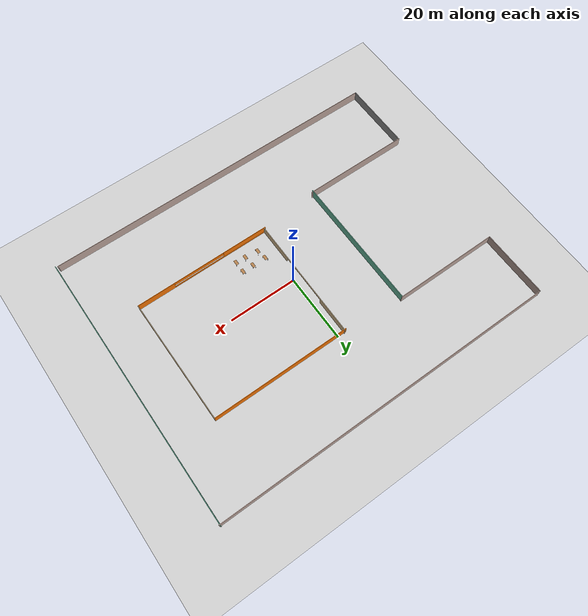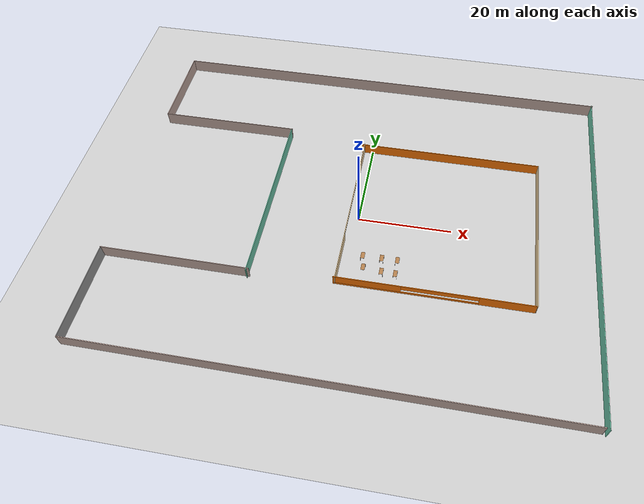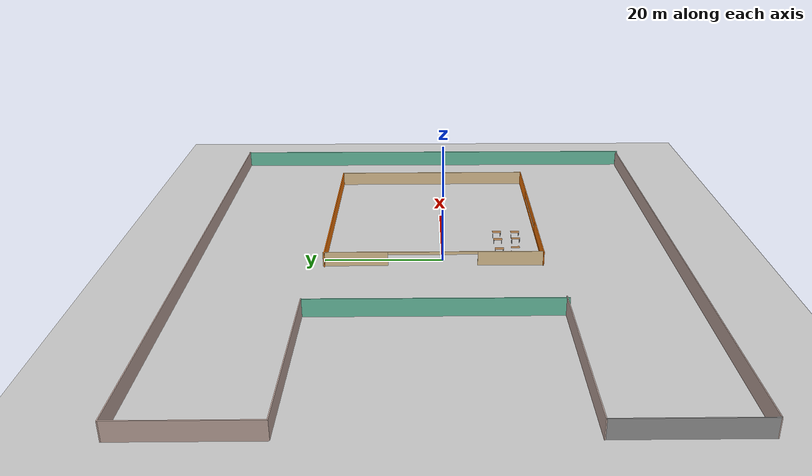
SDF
<sdf version="1.6">
 <world name="default">
  <model name="ground_plane">
   <static>1</static>
   <link name="link">
    <collision name="collision">
     <geometry><plane><normal>0 0 1</normal><size>100 100</size></plane></geometry>
     <surface>
      <contact><collide_bitmask>65535</collide_bitmask></contact>
      <friction><ode><mu>100</mu><mu2>50</mu2></ode></friction>
     </surface>
    </collision>
    <visual name="visual">
     <cast_shadows>0</cast_shadows>
     <geometry><plane><normal>0 0 1</normal><size>100 100</size></plane></geometry>
     <material>
      <script><uri>file://media/materials/scripts/gazebo.material</uri><name>Gazebo/Grey</name></script>
     </material>
    </visual>
   </link>
  </model>
  <model name="building">
   <pose>-0.109009 1.0921 0 0 -0 0</pose>
   <link name="Wall_0">
    <collision name="Wall_0_Collision">
     <geometry><box><size>101 0.15 3</size></box></geometry>
     <pose>0 0 1.5 0 -0 0</pose>
    </collision>
    <visual name="Wall_0_Visual">
     <pose>0 0 1.5 0 -0 0</pose>
     <geometry><box><size>101 0.15 3</size></box></geometry>
     <material>
      <script><uri>file://media/materials/scripts/gazebo.material</uri><name>Gazebo/Grey</name></script>
      <ambient>0.760784 0.662745 0.627451 1</ambient>
     </material>
     <meta><layer>0</layer></meta>
    </visual>
    <pose>0.173498 40.2649 0 0 -0 0</pose>
   </link>
   <link name="Wall_10">
    <collision name="Wall_10_Collision">
     <geometry><box><size>31.5 0.15 3</size></box></geometry>
     <pose>0 0 1.5 0 -0 0</pose>
    </collision>
    <visual name="Wall_10_Visual">
     <pose>0 0 1.5 0 -0 0</pose>
     <geometry><box><size>31.5 0.15 3</size></box></geometry>
     <material>
      <script><uri>file://media/materials/scripts/gazebo.material</uri><name>Gazebo/Grey</name></script>
      <ambient>0.760784 0.662745 0.627451 1</ambient>
     </material>
     <meta><layer>0</layer></meta>
    </visual>
    <pose>-34.9235 -19.2011 0 0 -0 3.14159</pose>
   </link>
   <link name="Wall_13">
    <collision name="Wall_13_Collision">
     <geometry><box><size>0.16 0.15 2.5</size></box></geometry>
     <pose>0 0 1.25 0 -0 0</pose>
    </collision>
    <visual name="Wall_13_Visual">
     <pose>0 0 1.25 0 -0 0</pose>
     <geometry><box><size>0.16 0.15 2.5</size></box></geometry>
     <material>
      <script><uri>file://media/materials/scripts/gazebo.material</uri><name>Gazebo/Grey</name></script>
      <ambient>1 1 1 1</ambient>
     </material>
     <meta><layer>0</layer></meta>
    </visual>
    <pose>50.4165 40.425 0 0 -0 0</pose>
   </link>
   <link name="Wall_14">
    <collision name="Wall_14_Collision">
     <geometry><box><size>81 0.15 3</size></box></geometry>
     <pose>0 0 1.5 0 -0 0</pose>
    </collision>
    <visual name="Wall_14_Visual">
     <pose>0 0 1.5 0 -0 0</pose>
     <geometry><box><size>81 0.15 3</size></box></geometry>
     <material>
      <script><uri>file://media/materials/scripts/gazebo.material</uri><name>Gazebo/Grey</name></script>
      <ambient>0.435294 0.796078 0.67451 1</ambient>
     </material>
     <meta><layer>0</layer></meta>
    </visual>
    <pose>50.4215 0 0 0 0 -1.5708</pose>
   </link>
   <link name="Wall_16">
    <collision name="Wall_16_Collision">
     <geometry><box><size>0.16 0.15 2.5</size></box></geometry>
     <pose>0 0 1.25 0 -0 0</pose>
    </collision>
    <visual name="Wall_16_Visual">
     <pose>0 0 1.25 0 -0 0</pose>
     <geometry><box><size>0.16 0.15 2.5</size></box></geometry>
     <material>
      <script><uri>file://media/materials/scripts/gazebo.material</uri><name>Gazebo/Grey</name></script>
      <ambient>1 1 1 1</ambient>
     </material>
     <meta><layer>0</layer></meta>
    </visual>
    <pose>49.8404 -40.0869 0 0 0 -0.020117</pose>
   </link>
   <link name="Wall_17">
    <collision name="Wall_17_Collision">
     <geometry><box><size>100.5 0.15 3</size></box></geometry>
     <pose>0 0 1.5 0 -0 0</pose>
    </collision>
    <visual name="Wall_17_Visual">
     <pose>0 0 1.5 0 -0 0</pose>
     <geometry><box><size>100.5 0.15 3</size></box></geometry>
     <material>
      <script><uri>file://media/materials/scripts/gazebo.material</uri><name>Gazebo/Grey</name></script>
      <ambient>0.760784 0.662745 0.627451 1</ambient>
     </material>
     <meta><layer>0</layer></meta>
    </visual>
    <pose>-0.329256 -39.9628 0 0 -0 3.13912</pose>
   </link>
   <link name="Wall_18">
    <collision name="Wall_18_Collision">
     <geometry><box><size>20.75 0.15 3</size></box></geometry>
     <pose>0 0 1.5 0 -0 0</pose>
    </collision>
    <visual name="Wall_18_Visual">
     <pose>0 0 1.5 0 -0 0</pose>
     <geometry><box><size>20.75 0.15 3</size></box></geometry>
     <material>
      <script><uri>file://media/materials/scripts/gazebo.material</uri><name>Gazebo/Grey</name></script>
      <ambient>1 1 1 1</ambient>
     </material>
     <meta><layer>0</layer></meta>
    </visual>
    <pose>-50.504 -29.5385 0 0 -0 1.5708</pose>
   </link>
   <link name="Wall_2">
    <collision name="Wall_2_Collision">
     <geometry><box><size>20 0.15 3</size></box></geometry>
     <pose>0 0 1.5 0 -0 0</pose>
    </collision>
    <visual name="Wall_2_Visual">
     <pose>0 0 1.5 0 -0 0</pose>
     <geometry><box><size>20 0.15 3</size></box></geometry>
     <material>
      <script><uri>file://media/materials/scripts/gazebo.material</uri><name>Gazebo/Grey</name></script>
      <ambient>0.760784 0.662745 0.627451 1</ambient>
     </material>
     <meta><layer>0</layer></meta>
    </visual>
    <pose>-50.2515 30.3399 0 0 0 -1.5708</pose>
   </link>
   <link name="Wall_20">
    <collision name="Wall_20_Collision">
     <geometry><box><size>40.5 0.15 2.5</size></box></geometry>
     <pose>0 0 1.25 0 -0 0</pose>
    </collision>
    <visual name="Wall_20_Visual">
     <pose>0 0 1.25 0 -0 0</pose>
     <geometry><box><size>40.5 0.15 2.5</size></box></geometry>
     <material>
      <script><uri>file://media/materials/scripts/gazebo.material</uri><name>Gazebo/Grey</name></script>
      <ambient>0.996078 0.47451 0.0196078 1</ambient>
     </material>
     <meta><layer>0</layer></meta>
    </visual>
    <pose>17.8014 18.7619 0 0 -0 0</pose>
   </link>
   <link name="Wall_21">
    <collision name="Wall_21_Collision">
     <geometry><box><size>36.8158 0.15 2.5</size></box></geometry>
     <pose>0 0 1.25 0 -0 0</pose>
    </collision>
    <visual name="Wall_21_Visual">
     <pose>0 0 1.25 0 -0 0</pose>
     <geometry><box><size>36.8158 0.15 2.5</size></box></geometry>
     <material>
      <script><uri>file://media/materials/scripts/gazebo.material</uri><name>Gazebo/Grey</name></script>
      <ambient>0.921569 0.807843 0.615686 1</ambient>
     </material>
     <meta><layer>0</layer></meta>
    </visual>
    <pose>38.0513 0.429146 0 0 0 -1.56671</pose>
   </link>
   <link name="Wall_22">
    <pose>17.9513 -17.9036 0 0 -0 3.14159</pose>
    <visual name="Wall_22_Visual_0">
     <pose>-14.6255 0 1.25 0 -0 0</pose>
     <geometry><box><size>11.2491 0.15 2.5</size></box></geometry>
     <material>
      <script><uri>file://media/materials/scripts/gazebo.material</uri><name>Gazebo/Grey</name></script>
      <ambient>0.996078 0.47451 0.0196078 1</ambient>
     </material>
     <meta><layer>0</layer></meta>
    </visual>
    <collision name="Wall_22_Collision_0">
     <geometry><box><size>11.2491 0.15 2.5</size></box></geometry>
     <pose>-14.6255 0 1.25 0 -0 0</pose>
    </collision>
    <visual name="Wall_22_Visual_1">
     <pose>5.62455 0 0.25 0 -0 0</pose>
     <geometry><box><size>29.2509 0.15 0.5</size></box></geometry>
     <material>
      <script><uri>file://media/materials/scripts/gazebo.material</uri><name>Gazebo/Grey</name></script>
      <ambient>0.996078 0.47451 0.0196078 1</ambient>
     </material>
     <meta><layer>0</layer></meta>
    </visual>
    <collision name="Wall_22_Collision_1">
     <geometry><box><size>29.2509 0.15 0.5</size></box></geometry>
     <pose>5.62455 0 0.25 0 -0 0</pose>
    </collision>
    <visual name="Wall_22_Visual_2">
     <pose>13.3636 0 1.5 0 -0 0</pose>
     <geometry><box><size>13.7728 0.15 2</size></box></geometry>
     <material>
      <script><uri>file://media/materials/scripts/gazebo.material</uri><name>Gazebo/Grey</name></script>
      <ambient>0.996078 0.47451 0.0196078 1</ambient>
     </material>
     <meta><layer>0</layer></meta>
    </visual>
    <collision name="Wall_22_Collision_2">
     <geometry><box><size>13.7728 0.15 2</size></box></geometry>
     <pose>13.3636 0 1.5 0 -0 0</pose>
    </collision>
    <visual name="Wall_22_Visual_3">
     <pose>-1.26183 0 1.9 0 -0 0</pose>
     <geometry><box><size>15.4782 0.15 1.2</size></box></geometry>
     <material>
      <script><uri>file://media/materials/scripts/gazebo.material</uri><name>Gazebo/Grey</name></script>
      <ambient>0.996078 0.47451 0.0196078 1</ambient>
     </material>
     <meta><layer>0</layer></meta>
    </visual>
    <collision name="Wall_22_Collision_3">
     <geometry><box><size>15.4782 0.15 1.2</size></box></geometry>
     <pose>-1.26183 0 1.9 0 -0 0</pose>
    </collision>
   </link>
   <link name="Wall_23">
    <pose>-1.86869 0.531521 0 0 -0 1.5708</pose>
    <visual name="Wall_23_Visual_0">
     <pose>-12.9542 0 1.25 0 -0 0</pose>
     <geometry><box><size>11.1118 0.15 2.5</size></box></geometry>
     <material>
      <script><uri>file://media/materials/scripts/gazebo.material</uri><name>Gazebo/Grey</name></script>
      <ambient>0.921569 0.807843 0.615686 1</ambient>
     </material>
     <meta><layer>0</layer></meta>
    </visual>
    <collision name="Wall_23_Collision_0">
     <geometry><box><size>11.1118 0.15 2.5</size></box></geometry>
     <pose>-12.9542 0 1.25 0 -0 0</pose>
    </collision>
    <visual name="Wall_23_Visual_1">
     <pose>13.0636 0 1.25 0 -0 0</pose>
     <geometry><box><size>10.893 0.15 2.5</size></box></geometry>
     <material>
      <script><uri>file://media/materials/scripts/gazebo.material</uri><name>Gazebo/Grey</name></script>
      <ambient>0.921569 0.807843 0.615686 1</ambient>
     </material>
     <meta><layer>0</layer></meta>
    </visual>
    <collision name="Wall_23_Collision_1">
     <geometry><box><size>10.893 0.15 2.5</size></box></geometry>
     <pose>13.0636 0 1.25 0 -0 0</pose>
    </collision>
    <visual name="Wall_23_Visual_2">
     <pose>0.109402 0 2.25 0 -0 0</pose>
     <geometry><box><size>15.0155 0.15 0.5</size></box></geometry>
     <material>
      <script><uri>file://media/materials/scripts/gazebo.material</uri><name>Gazebo/Grey</name></script>
      <ambient>0.921569 0.807843 0.615686 1</ambient>
     </material>
     <meta><layer>0</layer></meta>
    </visual>
    <collision name="Wall_23_Collision_2">
     <geometry><box><size>15.0155 0.15 0.5</size></box></geometry>
     <pose>0.109402 0 2.25 0 -0 0</pose>
    </collision>
   </link>
   <link name="Wall_3">
    <collision name="Wall_3_Collision">
     <geometry><box><size>30.8 0.15 3</size></box></geometry>
     <pose>0 0 1.5 0 -0 0</pose>
    </collision>
    <visual name="Wall_3_Visual">
     <pose>0 0 1.5 0 -0 0</pose>
     <geometry><box><size>30.8 0.15 3</size></box></geometry>
     <material>
      <script><uri>file://media/materials/scripts/gazebo.material</uri><name>Gazebo/Grey</name></script>
      <ambient>0.760784 0.662745 0.627451 1</ambient>
     </material>
     <meta><layer>0</layer></meta>
    </visual>
    <pose>-34.9265 20.4149 0 0 -0 0</pose>
   </link>
   <link name="Wall_8">
    <collision name="Wall_8_Collision">
     <geometry><box><size>40 0.15 3</size></box></geometry>
     <pose>0 0 1.5 0 -0 0</pose>
    </collision>
    <visual name="Wall_8_Visual">
     <pose>0 0 1.5 0 -0 0</pose>
     <geometry><box><size>40 0.15 3</size></box></geometry>
     <material>
      <script><uri>file://media/materials/scripts/gazebo.material</uri><name>Gazebo/Grey</name></script>
      <ambient>0.435294 0.796078 0.67451 1</ambient>
     </material>
     <meta><layer>0</layer></meta>
    </visual>
    <pose>-19.7001 0.327961 0 0 0 -1.5708</pose>
   </link>
   <static>1</static>
  </model>
  <model name="table">
   <static>1</static>
   <link name="link">
    <collision name="surface">
     <pose>0 0 1 0 -0 0</pose>
     <geometry><box><size>1.5 0.8 0.03</size></box></geometry>
     <surface><friction><ode><mu>0.6</mu><mu2>0.6</mu2></ode></friction></surface>
    </collision>
    <visual name="visual1">
     <pose>0 0 1 0 -0 0</pose>
     <geometry><box><size>1.5 0.8 0.03</size></box></geometry>
     <material>
      <script><uri>file://media/materials/scripts/gazebo.material</uri><name>Gazebo/Wood</name></script>
     </material>
    </visual>
    <collision name="front_left_leg">
     <pose>0.68 0.38 0.5 0 -0 0</pose>
     <geometry><cylinder><radius>0.02</radius><length>1</length></cylinder></geometry>
    </collision>
    <visual name="front_left_leg">
     <pose>0.68 0.38 0.5 0 -0 0</pose>
     <geometry><cylinder><radius>0.02</radius><length>1</length></cylinder></geometry>
     <material>
      <script><uri>file://media/materials/scripts/gazebo.material</uri><name>Gazebo/Grey</name></script>
     </material>
    </visual>
    <collision name="front_right_leg">
     <pose>0.68 -0.38 0.5 0 -0 0</pose>
     <geometry><cylinder><radius>0.02</radius><length>1</length></cylinder></geometry>
    </collision>
    <visual name="front_right_leg">
     <pose>0.68 -0.38 0.5 0 -0 0</pose>
     <geometry><cylinder><radius>0.02</radius><length>1</length></cylinder></geometry>
     <material>
      <script><uri>file://media/materials/scripts/gazebo.material</uri><name>Gazebo/Grey</name></script>
     </material>
    </visual>
    <collision name="back_right_leg">
     <pose>-0.68 -0.38 0.5 0 -0 0</pose>
     <geometry><cylinder><radius>0.02</radius><length>1</length></cylinder></geometry>
    </collision>
    <visual name="back_right_leg">
     <pose>-0.68 -0.38 0.5 0 -0 0</pose>
     <geometry><cylinder><radius>0.02</radius><length>1</length></cylinder></geometry>
     <material>
      <script><uri>file://media/materials/scripts/gazebo.material</uri><name>Gazebo/Grey</name></script>
     </material>
    </visual>
    <collision name="back_left_leg">
     <pose>-0.68 0.38 0.5 0 -0 0</pose>
     <geometry><cylinder><radius>0.02</radius><length>1</length></cylinder></geometry>
    </collision>
    <visual name="back_left_leg">
     <pose>-0.68 0.38 0.5 0 -0 0</pose>
     <geometry><cylinder><radius>0.02</radius><length>1</length></cylinder></geometry>
     <material>
      <script><uri>file://media/materials/scripts/gazebo.material</uri><name>Gazebo/Grey</name></script>
     </material>
    </visual>
   </link>
   <pose>2.54233 -9.76678 0 0 0 -1.57678</pose>
  </model>
  <model name="table_clone">
   <static>1</static>
   <link name="link">
    <collision name="surface">
     <pose>0 0 1 0 -0 0</pose>
     <geometry><box><size>1.5 0.8 0.03</size></box></geometry>
     <surface><friction><ode><mu>0.6</mu><mu2>0.6</mu2></ode></friction></surface>
    </collision>
    <visual name="visual1">
     <pose>0 0 1 0 -0 0</pose>
     <geometry><box><size>1.5 0.8 0.03</size></box></geometry>
     <material>
      <script><uri>file://media/materials/scripts/gazebo.material</uri><name>Gazebo/Wood</name></script>
     </material>
    </visual>
    <collision name="front_left_leg">
     <pose>0.68 0.38 0.5 0 -0 0</pose>
     <geometry><cylinder><radius>0.02</radius><length>1</length></cylinder></geometry>
    </collision>
    <visual name="front_left_leg">
     <pose>0.68 0.38 0.5 0 -0 0</pose>
     <geometry><cylinder><radius>0.02</radius><length>1</length></cylinder></geometry>
     <material>
      <script><uri>file://media/materials/scripts/gazebo.material</uri><name>Gazebo/Grey</name></script>
     </material>
    </visual>
    <collision name="front_right_leg">
     <pose>0.68 -0.38 0.5 0 -0 0</pose>
     <geometry><cylinder><radius>0.02</radius><length>1</length></cylinder></geometry>
    </collision>
    <visual name="front_right_leg">
     <pose>0.68 -0.38 0.5 0 -0 0</pose>
     <geometry><cylinder><radius>0.02</radius><length>1</length></cylinder></geometry>
     <material>
      <script><uri>file://media/materials/scripts/gazebo.material</uri><name>Gazebo/Grey</name></script>
     </material>
    </visual>
    <collision name="back_right_leg">
     <pose>-0.68 -0.38 0.5 0 -0 0</pose>
     <geometry><cylinder><radius>0.02</radius><length>1</length></cylinder></geometry>
    </collision>
    <visual name="back_right_leg">
     <pose>-0.68 -0.38 0.5 0 -0 0</pose>
     <geometry><cylinder><radius>0.02</radius><length>1</length></cylinder></geometry>
     <material>
      <script><uri>file://media/materials/scripts/gazebo.material</uri><name>Gazebo/Grey</name></script>
     </material>
    </visual>
    <collision name="back_left_leg">
     <pose>-0.68 0.38 0.5 0 -0 0</pose>
     <geometry><cylinder><radius>0.02</radius><length>1</length></cylinder></geometry>
    </collision>
    <visual name="back_left_leg">
     <pose>-0.68 0.38 0.5 0 -0 0</pose>
     <geometry><cylinder><radius>0.02</radius><length>1</length></cylinder></geometry>
     <material>
      <script><uri>file://media/materials/scripts/gazebo.material</uri><name>Gazebo/Grey</name></script>
     </material>
    </visual>
   </link>
   <pose>6.50563 -9.80936 0 0 0 -1.57678</pose>
  </model>
  <model name="table_clone_0">
   <static>1</static>
   <link name="link">
    <collision name="surface">
     <pose>0 0 1 0 -0 0</pose>
     <geometry><box><size>1.5 0.8 0.03</size></box></geometry>
     <surface><friction><ode><mu>0.6</mu><mu2>0.6</mu2></ode></friction></surface>
    </collision>
    <visual name="visual1">
     <pose>0 0 1 0 -0 0</pose>
     <geometry><box><size>1.5 0.8 0.03</size></box></geometry>
     <material>
      <script><uri>file://media/materials/scripts/gazebo.material</uri><name>Gazebo/Wood</name></script>
     </material>
    </visual>
    <collision name="front_left_leg">
     <pose>0.68 0.38 0.5 0 -0 0</pose>
     <geometry><cylinder><radius>0.02</radius><length>1</length></cylinder></geometry>
    </collision>
    <visual name="front_left_leg">
     <pose>0.68 0.38 0.5 0 -0 0</pose>
     <geometry><cylinder><radius>0.02</radius><length>1</length></cylinder></geometry>
     <material>
      <script><uri>file://media/materials/scripts/gazebo.material</uri><name>Gazebo/Grey</name></script>
     </material>
    </visual>
    <collision name="front_right_leg">
     <pose>0.68 -0.38 0.5 0 -0 0</pose>
     <geometry><cylinder><radius>0.02</radius><length>1</length></cylinder></geometry>
    </collision>
    <visual name="front_right_leg">
     <pose>0.68 -0.38 0.5 0 -0 0</pose>
     <geometry><cylinder><radius>0.02</radius><length>1</length></cylinder></geometry>
     <material>
      <script><uri>file://media/materials/scripts/gazebo.material</uri><name>Gazebo/Grey</name></script>
     </material>
    </visual>
    <collision name="back_right_leg">
     <pose>-0.68 -0.38 0.5 0 -0 0</pose>
     <geometry><cylinder><radius>0.02</radius><length>1</length></cylinder></geometry>
    </collision>
    <visual name="back_right_leg">
     <pose>-0.68 -0.38 0.5 0 -0 0</pose>
     <geometry><cylinder><radius>0.02</radius><length>1</length></cylinder></geometry>
     <material>
      <script><uri>file://media/materials/scripts/gazebo.material</uri><name>Gazebo/Grey</name></script>
     </material>
    </visual>
    <collision name="back_left_leg">
     <pose>-0.68 0.38 0.5 0 -0 0</pose>
     <geometry><cylinder><radius>0.02</radius><length>1</length></cylinder></geometry>
    </collision>
    <visual name="back_left_leg">
     <pose>-0.68 0.38 0.5 0 -0 0</pose>
     <geometry><cylinder><radius>0.02</radius><length>1</length></cylinder></geometry>
     <material>
      <script><uri>file://media/materials/scripts/gazebo.material</uri><name>Gazebo/Grey</name></script>
     </material>
    </visual>
   </link>
   <pose>9.76275 -9.80948 0 0 0 -1.57678</pose>
  </model>
  <model name="table_clone_2">
   <static>1</static>
   <link name="link">
    <collision name="surface">
     <pose>0 0 1 0 -0 0</pose>
     <geometry><box><size>1.5 0.8 0.03</size></box></geometry>
     <surface><friction><ode><mu>0.6</mu><mu2>0.6</mu2></ode></friction></surface>
    </collision>
    <visual name="visual1">
     <pose>0 0 1 0 -0 0</pose>
     <geometry><box><size>1.5 0.8 0.03</size></box></geometry>
     <material>
      <script><uri>file://media/materials/scripts/gazebo.material</uri><name>Gazebo/Wood</name></script>
     </material>
    </visual>
    <collision name="front_left_leg">
     <pose>0.68 0.38 0.5 0 -0 0</pose>
     <geometry><cylinder><radius>0.02</radius><length>1</length></cylinder></geometry>
    </collision>
    <visual name="front_left_leg">
     <pose>0.68 0.38 0.5 0 -0 0</pose>
     <geometry><cylinder><radius>0.02</radius><length>1</length></cylinder></geometry>
     <material>
      <script><uri>file://media/materials/scripts/gazebo.material</uri><name>Gazebo/Grey</name></script>
     </material>
    </visual>
    <collision name="front_right_leg">
     <pose>0.68 -0.38 0.5 0 -0 0</pose>
     <geometry><cylinder><radius>0.02</radius><length>1</length></cylinder></geometry>
    </collision>
    <visual name="front_right_leg">
     <pose>0.68 -0.38 0.5 0 -0 0</pose>
     <geometry><cylinder><radius>0.02</radius><length>1</length></cylinder></geometry>
     <material>
      <script><uri>file://media/materials/scripts/gazebo.material</uri><name>Gazebo/Grey</name></script>
     </material>
    </visual>
    <collision name="back_right_leg">
     <pose>-0.68 -0.38 0.5 0 -0 0</pose>
     <geometry><cylinder><radius>0.02</radius><length>1</length></cylinder></geometry>
    </collision>
    <visual name="back_right_leg">
     <pose>-0.68 -0.38 0.5 0 -0 0</pose>
     <geometry><cylinder><radius>0.02</radius><length>1</length></cylinder></geometry>
     <material>
      <script><uri>file://media/materials/scripts/gazebo.material</uri><name>Gazebo/Grey</name></script>
     </material>
    </visual>
    <collision name="back_left_leg">
     <pose>-0.68 0.38 0.5 0 -0 0</pose>
     <geometry><cylinder><radius>0.02</radius><length>1</length></cylinder></geometry>
    </collision>
    <visual name="back_left_leg">
     <pose>-0.68 0.38 0.5 0 -0 0</pose>
     <geometry><cylinder><radius>0.02</radius><length>1</length></cylinder></geometry>
     <material>
      <script><uri>file://media/materials/scripts/gazebo.material</uri><name>Gazebo/Grey</name></script>
     </material>
    </visual>
   </link>
   <pose>6.8781 -12.9747 0 0 0 -1.57678</pose>
  </model>
  <model name="table_clone_3">
   <static>1</static>
   <link name="link">
    <collision name="surface">
     <pose>0 0 1 0 -0 0</pose>
     <geometry><box><size>1.5 0.8 0.03</size></box></geometry>
     <surface><friction><ode><mu>0.6</mu><mu2>0.6</mu2></ode></friction></surface>
    </collision>
    <visual name="visual1">
     <pose>0 0 1 0 -0 0</pose>
     <geometry><box><size>1.5 0.8 0.03</size></box></geometry>
     <material>
      <script><uri>file://media/materials/scripts/gazebo.material</uri><name>Gazebo/Wood</name></script>
     </material>
    </visual>
    <collision name="front_left_leg">
     <pose>0.68 0.38 0.5 0 -0 0</pose>
     <geometry><cylinder><radius>0.02</radius><length>1</length></cylinder></geometry>
    </collision>
    <visual name="front_left_leg">
     <pose>0.68 0.38 0.5 0 -0 0</pose>
     <geometry><cylinder><radius>0.02</radius><length>1</length></cylinder></geometry>
     <material>
      <script><uri>file://media/materials/scripts/gazebo.material</uri><name>Gazebo/Grey</name></script>
     </material>
    </visual>
    <collision name="front_right_leg">
     <pose>0.68 -0.38 0.5 0 -0 0</pose>
     <geometry><cylinder><radius>0.02</radius><length>1</length></cylinder></geometry>
    </collision>
    <visual name="front_right_leg">
     <pose>0.68 -0.38 0.5 0 -0 0</pose>
     <geometry><cylinder><radius>0.02</radius><length>1</length></cylinder></geometry>
     <material>
      <script><uri>file://media/materials/scripts/gazebo.material</uri><name>Gazebo/Grey</name></script>
     </material>
    </visual>
    <collision name="back_right_leg">
     <pose>-0.68 -0.38 0.5 0 -0 0</pose>
     <geometry><cylinder><radius>0.02</radius><length>1</length></cylinder></geometry>
    </collision>
    <visual name="back_right_leg">
     <pose>-0.68 -0.38 0.5 0 -0 0</pose>
     <geometry><cylinder><radius>0.02</radius><length>1</length></cylinder></geometry>
     <material>
      <script><uri>file://media/materials/scripts/gazebo.material</uri><name>Gazebo/Grey</name></script>
     </material>
    </visual>
    <collision name="back_left_leg">
     <pose>-0.68 0.38 0.5 0 -0 0</pose>
     <geometry><cylinder><radius>0.02</radius><length>1</length></cylinder></geometry>
    </collision>
    <visual name="back_left_leg">
     <pose>-0.68 0.38 0.5 0 -0 0</pose>
     <geometry><cylinder><radius>0.02</radius><length>1</length></cylinder></geometry>
     <material>
      <script><uri>file://media/materials/scripts/gazebo.material</uri><name>Gazebo/Grey</name></script>
     </material>
    </visual>
   </link>
   <pose>9.77098 -13.0717 0 0 0 -1.57678</pose>
  </model>
  <model name="table_clone_5">
   <static>1</static>
   <link name="link">
    <collision name="surface">
     <pose>0 0 1 0 -0 0</pose>
     <geometry><box><size>1.5 0.8 0.03</size></box></geometry>
     <surface><friction><ode><mu>0.6</mu><mu2>0.6</mu2></ode></friction></surface>
    </collision>
    <visual name="visual1">
     <pose>0 0 1 0 -0 0</pose>
     <geometry><box><size>1.5 0.8 0.03</size></box></geometry>
     <material>
      <script><uri>file://media/materials/scripts/gazebo.material</uri><name>Gazebo/Wood</name></script>
     </material>
    </visual>
    <collision name="front_left_leg">
     <pose>0.68 0.38 0.5 0 -0 0</pose>
     <geometry><cylinder><radius>0.02</radius><length>1</length></cylinder></geometry>
    </collision>
    <visual name="front_left_leg">
     <pose>0.68 0.38 0.5 0 -0 0</pose>
     <geometry><cylinder><radius>0.02</radius><length>1</length></cylinder></geometry>
     <material>
      <script><uri>file://media/materials/scripts/gazebo.material</uri><name>Gazebo/Grey</name></script>
     </material>
    </visual>
    <collision name="front_right_leg">
     <pose>0.68 -0.38 0.5 0 -0 0</pose>
     <geometry><cylinder><radius>0.02</radius><length>1</length></cylinder></geometry>
    </collision>
    <visual name="front_right_leg">
     <pose>0.68 -0.38 0.5 0 -0 0</pose>
     <geometry><cylinder><radius>0.02</radius><length>1</length></cylinder></geometry>
     <material>
      <script><uri>file://media/materials/scripts/gazebo.material</uri><name>Gazebo/Grey</name></script>
     </material>
    </visual>
    <collision name="back_right_leg">
     <pose>-0.68 -0.38 0.5 0 -0 0</pose>
     <geometry><cylinder><radius>0.02</radius><length>1</length></cylinder></geometry>
    </collision>
    <visual name="back_right_leg">
     <pose>-0.68 -0.38 0.5 0 -0 0</pose>
     <geometry><cylinder><radius>0.02</radius><length>1</length></cylinder></geometry>
     <material>
      <script><uri>file://media/materials/scripts/gazebo.material</uri><name>Gazebo/Grey</name></script>
     </material>
    </visual>
    <collision name="back_left_leg">
     <pose>-0.68 0.38 0.5 0 -0 0</pose>
     <geometry><cylinder><radius>0.02</radius><length>1</length></cylinder></geometry>
    </collision>
    <visual name="back_left_leg">
     <pose>-0.68 0.38 0.5 0 -0 0</pose>
     <geometry><cylinder><radius>0.02</radius><length>1</length></cylinder></geometry>
     <material>
      <script><uri>file://media/materials/scripts/gazebo.material</uri><name>Gazebo/Grey</name></script>
     </material>
    </visual>
   </link>
   <pose>3.04773 -12.563 0 0 0 -1.57678</pose>
  </model>
 </world>
</sdf>
